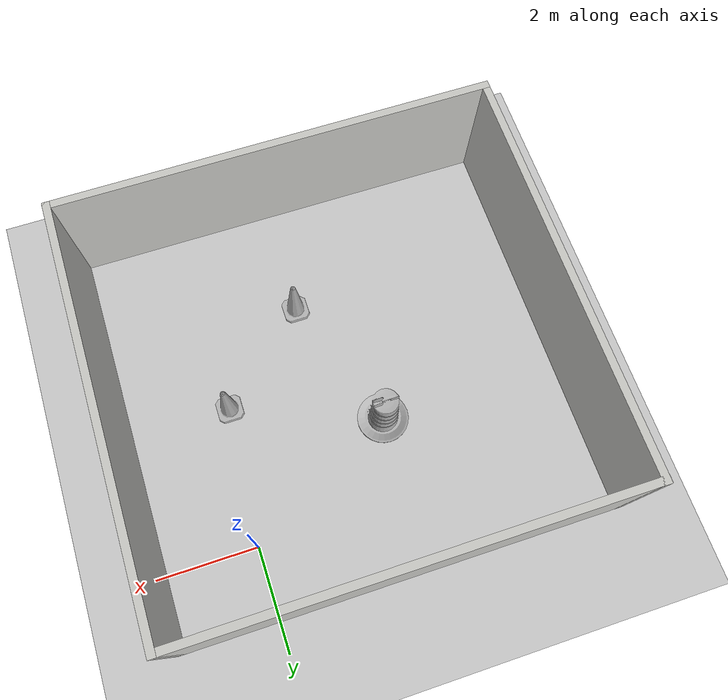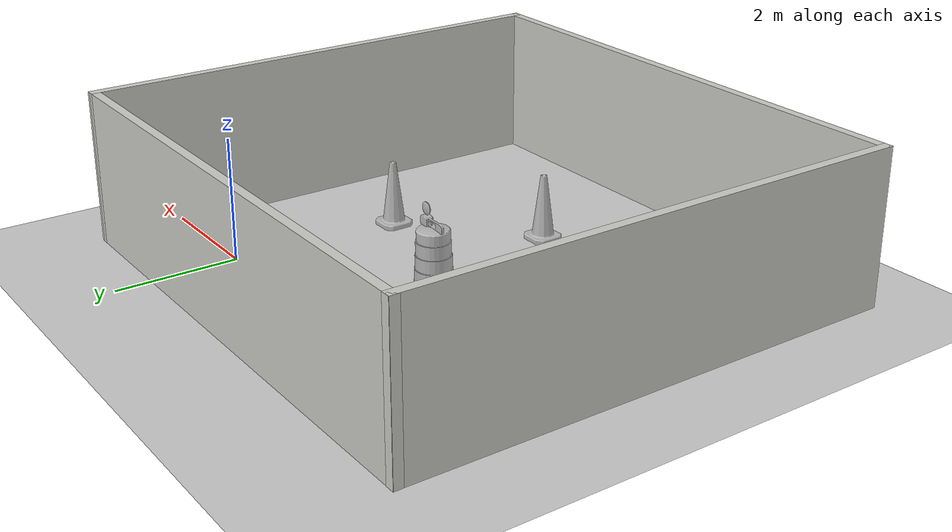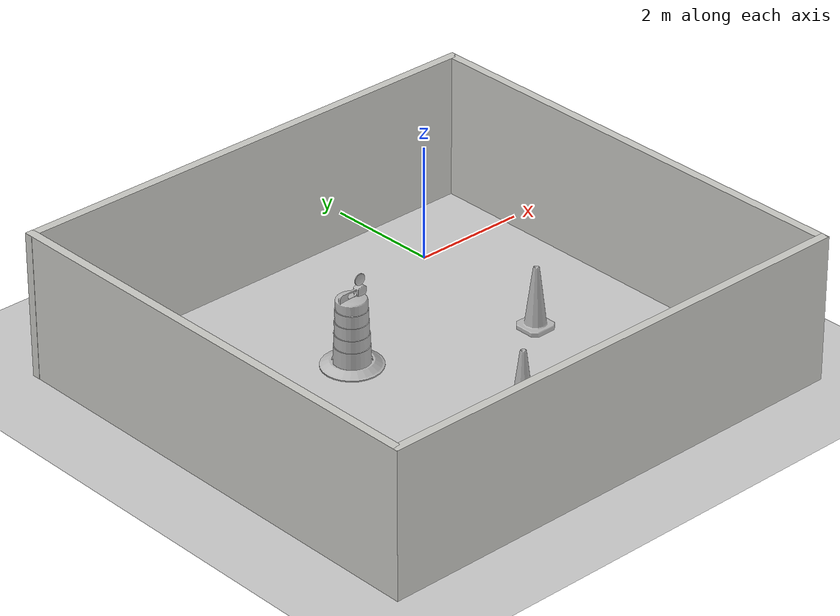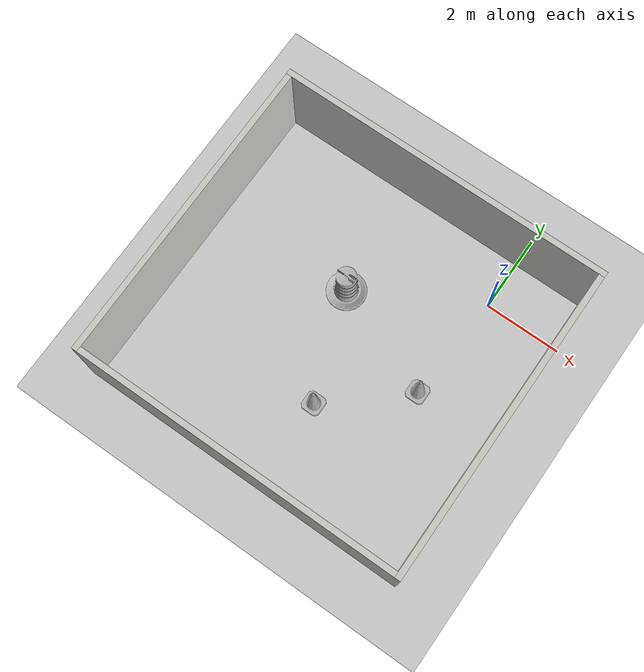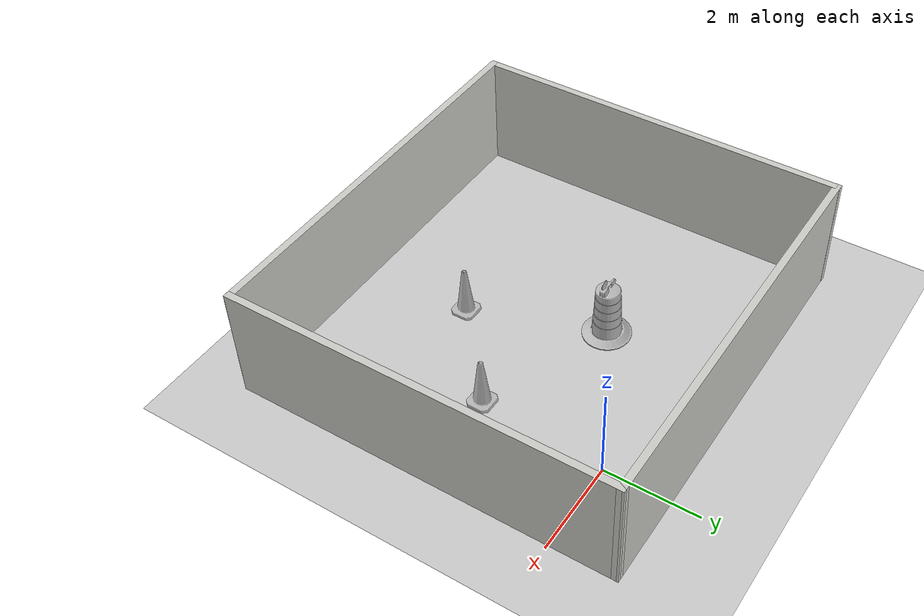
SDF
<sdf version="1.7">
 <world name="default">
  <light name="sun" type="directional">
   <pose>0 0 10 0 -0 0</pose>
   <diffuse>0.8 0.8 0.8 1</diffuse>
   <specular>0.2 0.2 0.2 1</specular>
   <attenuation>
    <range>1000</range>
    <constant>0.9</constant>
    <linear>0.01</linear>
    <quadratic>0.001</quadratic>
   </attenuation>
   <direction>-0.5 0.1 -0.9</direction>
   <spot><inner_angle>0</inner_angle><outer_angle>0</outer_angle><falloff>0</falloff></spot>
  </light>
  <model name="ground_plane">
   <static>1</static>
   <link name="link">
    <collision name="collision">
     <geometry><plane><normal>0 0 1</normal><size>100 100</size></plane></geometry>
     <surface>
      <contact><collide_bitmask>65535</collide_bitmask></contact>
      <friction><ode><mu>100</mu><mu2>50</mu2></ode></friction>
     </surface>
    </collision>
    <visual name="visual">
     <cast_shadows>0</cast_shadows>
     <geometry><plane><normal>0 0 1</normal><size>100 100</size></plane></geometry>
     <material>
      <script><uri>file://media/materials/scripts/gazebo.material</uri><name>Gazebo/Grey</name></script>
     </material>
    </visual>
   </link>
  </model>
  <gravity>0 0 -9.8</gravity>
  <magnetic_field>6e-06 2.3e-05 -4.2e-05</magnetic_field>
  <atmosphere type="adiabatic"/>
  <physics type="ode">
   <max_step_size>0.001</max_step_size>
   <real_time_factor>1</real_time_factor>
   <real_time_update_rate>1000</real_time_update_rate>
  </physics>
  <scene><ambient>0.4 0.4 0.4 1</ambient><background>0.7 0.7 0.7 1</background><shadows>1</shadows></scene>
  <audio><device>default</device></audio>
  <spherical_coordinates>
   <surface_model>EARTH_WGS84</surface_model>
   <latitude_deg>0</latitude_deg>
   <longitude_deg>0</longitude_deg>
   <elevation>0</elevation>
   <heading_deg>0</heading_deg>
  </spherical_coordinates>
  <model name="Construction Cone">
   <link name="link">
    <collision name="collision">
     <geometry>
      <mesh><scale>10 10 10</scale><uri>model://construction_cone/meshes/construction_cone.dae</uri></mesh>
     </geometry>
    </collision>
    <visual name="visual">
     <geometry>
      <mesh><scale>10 10 10</scale><uri>model://construction_cone/meshes/construction_cone.dae</uri></mesh>
     </geometry>
    </visual>
    <inertial>
     <inertia><ixx>1</ixx><ixy>0</ixy><ixz>0</ixz><iyy>1</iyy><iyz>0</iyz><izz>1</izz></inertia>
     <mass>1</mass>
    </inertial>
   </link>
   <pose>-0.206345 -2.77527 -9e-06 0 0 -0.001511</pose>
  </model>
  <model name="Construction Cone_0">
   <link name="link">
    <collision name="collision">
     <geometry>
      <mesh><scale>10 10 10</scale><uri>model://construction_cone/meshes/construction_cone.dae</uri></mesh>
     </geometry>
    </collision>
    <visual name="visual">
     <geometry>
      <mesh><scale>10 10 10</scale><uri>model://construction_cone/meshes/construction_cone.dae</uri></mesh>
     </geometry>
    </visual>
    <inertial>
     <inertia><ixx>1</ixx><ixy>0</ixy><ixz>0</ixz><iyy>1</iyy><iyz>0</iyz><izz>1</izz></inertia>
     <mass>1</mass>
    </inertial>
   </link>
   <pose>-2.07837 -4.42559 -8e-06 1e-06 -0 0</pose>
  </model>
  <model name="Construction Barrel">
   <link name="link">
    <inertial>
     <pose>0 0 0.4 0 -0 0</pose>
     <mass>500</mass>
     <inertia><ixx>51.2096</ixx><iyy>51.2096</iyy><izz>25</izz><ixy>0</ixy><ixz>0</ixz><iyz>0</iyz></inertia>
    </inertial>
    <collision name="collision">
     <geometry><mesh><uri>model://construction_barrel/meshes/construction_barrel.dae</uri></mesh></geometry>
    </collision>
    <visual name="visual">
     <geometry><mesh><uri>model://construction_barrel/meshes/construction_barrel.dae</uri></mesh></geometry>
    </visual>
   </link>
   <pose>-3.05064 -1.67295 0 1e-06 1e-06 -3.3e-05</pose>
  </model>
  <model name="Untitled">
   <pose>-2.45506 -2.71383 0 0 -0 0</pose>
   <link name="Wall_2">
    <collision name="Wall_2_Collision">
     <geometry><box><size>8.25 0.15 2.5</size></box></geometry>
     <pose>0 0 1.25 0 -0 0</pose>
    </collision>
    <visual name="Wall_2_Visual">
     <pose>0 0 1.25 0 -0 0</pose>
     <geometry><box><size>8.25 0.15 2.5</size></box></geometry>
     <material>
      <script><uri>file://media/materials/scripts/gazebo.material</uri><name>Gazebo/CeilingTiled</name></script>
      <ambient>1 1 1 1</ambient>
     </material>
     <meta><layer>0</layer></meta>
    </visual>
    <pose>-4.29786 -0.000957 0 0 -0 -1.5708</pose>
   </link>
   <link name="Wall_3">
    <collision name="Wall_3_Collision">
     <geometry><box><size>8.75 0.15 2.5</size></box></geometry>
     <pose>0 0 1.25 0 -0 0</pose>
    </collision>
    <visual name="Wall_3_Visual">
     <pose>0 0 1.25 0 -0 0</pose>
     <geometry><box><size>8.75 0.15 2.5</size></box></geometry>
     <material>
      <script><uri>file://media/materials/scripts/gazebo.material</uri><name>Gazebo/CeilingTiled</name></script>
      <ambient>1 1 1 1</ambient>
     </material>
     <meta><layer>0</layer></meta>
    </visual>
    <pose>0.002144 -4.05096 0 0 -0 0</pose>
   </link>
   <link name="Wall_4">
    <collision name="Wall_4_Collision">
     <geometry><box><size>8.25 0.15 2.5</size></box></geometry>
     <pose>0 0 1.25 0 -0 0</pose>
    </collision>
    <visual name="Wall_4_Visual">
     <pose>0 0 1.25 0 -0 0</pose>
     <geometry><box><size>8.25 0.15 2.5</size></box></geometry>
     <material>
      <script><uri>file://media/materials/scripts/gazebo.material</uri><name>Gazebo/CeilingTiled</name></script>
      <ambient>1 1 1 1</ambient>
     </material>
     <meta><layer>0</layer></meta>
    </visual>
    <pose>4.30214 0.000912 0 0 -0 1.5708</pose>
   </link>
   <link name="Wall_5">
    <collision name="Wall_5_Collision">
     <geometry><box><size>8.75429 0.15 2.5</size></box></geometry>
     <pose>0 0 1.25 0 -0 0</pose>
    </collision>
    <visual name="Wall_5_Visual">
     <pose>0 0 1.25 0 -0 0</pose>
     <geometry><box><size>8.75429 0.15 2.5</size></box></geometry>
     <material>
      <script><uri>file://media/materials/scripts/gazebo.material</uri><name>Gazebo/CeilingTiled</name></script>
      <ambient>1 1 1 1</ambient>
     </material>
     <meta><layer>0</layer></meta>
    </visual>
    <pose>0 4.04827 0 0 -0 -3.14098</pose>
   </link>
   <static>1</static>
  </model>
 </world>
</sdf>
